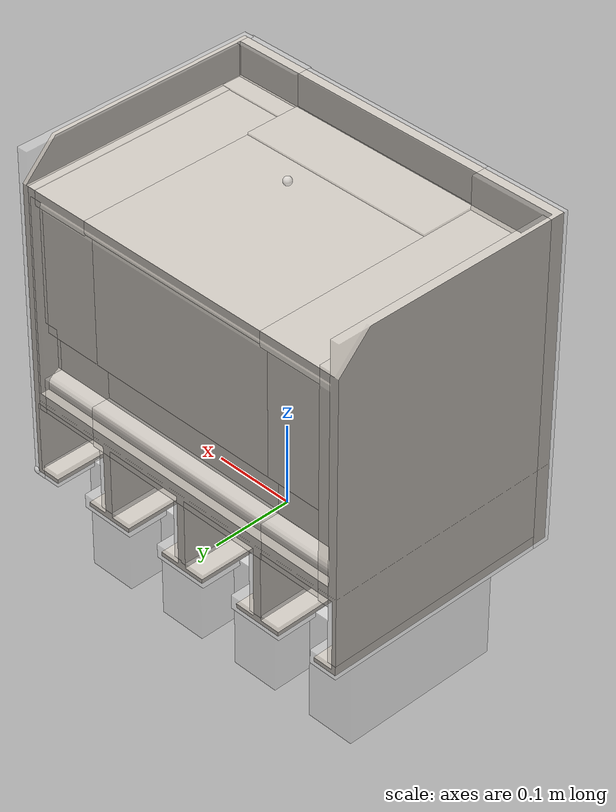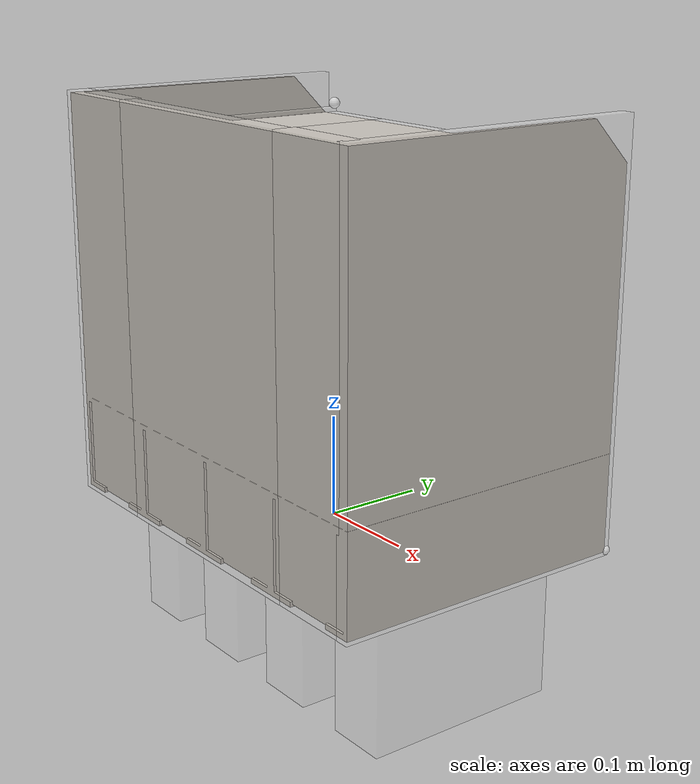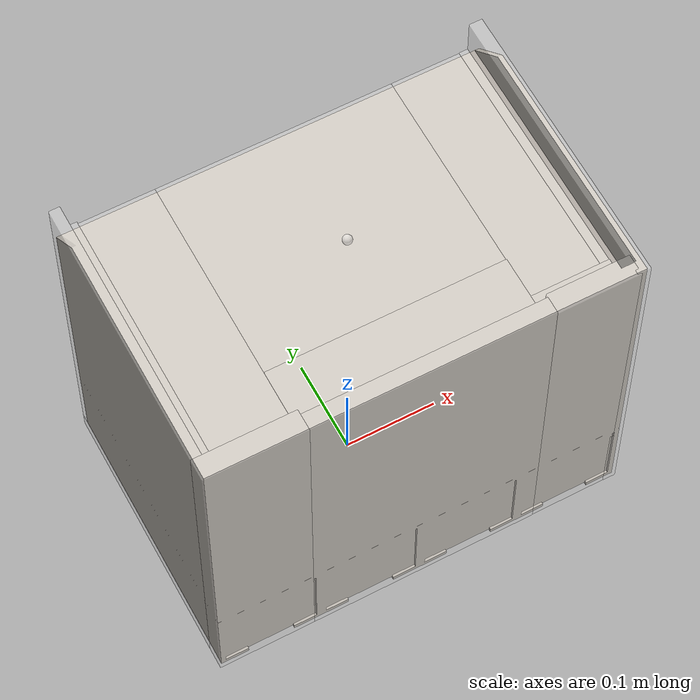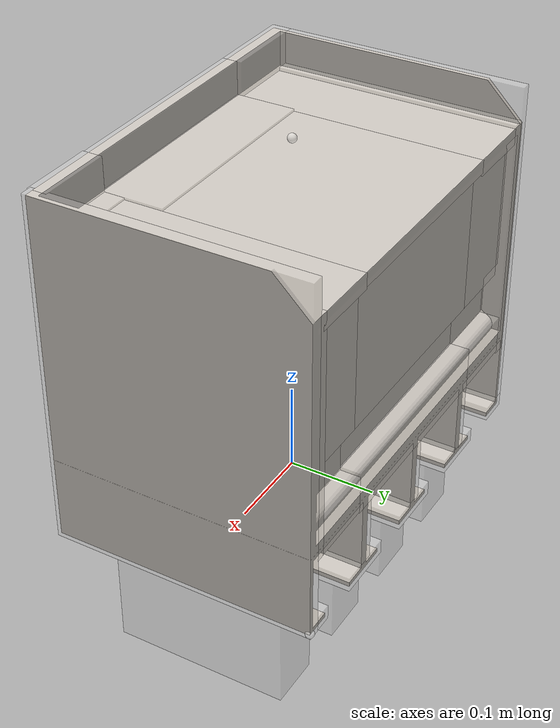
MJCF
<mujoco model="powerdrill_holder">
  <default>
    <default class="visual">
      <geom group="1" type="mesh" contype="0" conaffinity="0" density="100"/>
    </default>
    <default class="collision">
      <geom group="0" type="mesh" density="100" solimp="0.95 0.98 0.001" solref="0.004 1" rgba="1 1 1 0.25"/>
    </default>
    <default class="spawn">
      <geom group="0" rgba="1 1 1 0.5" contype="0" conaffinity="0" density="0" mass="0"/>
    </default>
  </default>
  <asset>
    <texture type="2d" name="powerdrill_holder" file="textures/powerdrill_holder.png"/>
    <material name="Material.001" texture="powerdrill_holder" specular="0.5" shininess="0.25"/>
    <mesh file="meshes/powerdrill_holder.obj" name="powerdrill_holder"/>
  </asset>
  <worldbody>
    <body>
      <body name="object">
        <geom material="Material.001" mesh="powerdrill_holder" class="visual"/>
        <geom name="collider_box_516333ae" type="box" pos="0.11 0.006959143201394105 0.003485479995282619" size="0.008404680444554316 0.034 0.1436033241479146" quat="0.50000151535312 -0.49999848464228763 0.4999984846422874 0.50000151535312" class="collision"/>
        <geom name="collider_box_dcdbc0df" type="box" pos="-0.003802258167903656 0.0067383493146069414 0.047501902937194446" size="0.008 0.03771611365395899 0.14382766805441227" quat="0.010325686859960189 0.007942339442373393 0.7070313855769556 0.7070621749494043" class="collision"/>
        <geom name="collider_box_e9625308" type="box" pos="0.004002929999999992 0.03721993500000001 0.26525812000000004" size="0.08192868 0.104033065 0.12291777" quat="0.7071067811865476 0.0 0.7071067811865472 -4.3297802811774695e-17" class="collision"/>
        <geom name="collider_box_a6d57439" type="box" pos="-0.109 0.006959169999999994 0.0034846450000000006" size="0.008404645 0.034 0.1436033" quat="0.5000000000000001 0.5000000000000001 0.5000000000000001 -0.5000000000000001" class="collision"/>
        <geom name="collider_box_cbc69279" type="box" pos="0.0040029300000000035 -0.101737155 0.222273675" size="0.034900135 0.12291777 0.142556775" quat="-0.0 -0.7071067811865476 -0.7071067811865475 -0.0" class="collision"/>
        <geom name="collider_box_9f19c9d2" type="box" pos="2.9033483871822596e-17 0.0069572263693477385 0.003447625606975718" size="0.008406216159871594 0.034 0.14360361976314917" quat="0.49993281148406415 -0.5000671794885555 0.5000671794885553 0.499932811484064" class="collision"/>
        <geom name="collider_box_b94016ac" type="box" pos="0.004002929999999997 -0.145403065 0.19884999999999997" size="0.008758934999999995 0.12291777 0.20376999999999998" quat="-0.0 -0.7071067811865476 -0.7071067811865475 -0.0" class="collision"/>
        <geom name="collider_box_e6de5c97" type="box" pos="0.004002929999999993 0.041932440000000015 0.10977827500000001" size="0.024715615000000003 0.10874556 0.12291777" quat="0.7071067811865476 0.0 0.7071067811865472 -4.3297802811774695e-17" class="collision"/>
        <geom name="collider_box_119569c3" type="box" pos="0.10999956500000001 0.007004236609296752 0.047832629694666756" size="0.008 0.03731238739140088 0.14366872839516645" quat="2.0401353569717729e-16 2.1655812986403283e-17 0.7073325305379774 0.7068809597398571" class="collision"/>
        <geom name="collider_box_b1018657" type="box" pos="0.21555919499999998 -0.0017419999999999803 0.19884999999999997" size="0.006860815000000006 0.15242 0.20376998999999998" quat="0.0 0.0 1.0 0.0" class="collision"/>
        <geom name="collider_box_2ef758d4" type="box" pos="-0.15831034 0.004872760000000013 0.263756415" size="0.039380099999999994 0.08026318499999999 0.1363864" quat="2.1648901405887348e-17 -0.0 0.7071067811865472 0.7071067811865476" class="collision"/>
        <geom name="collider_box_cb85fbaa" type="box" pos="0.16358334500000002 0.020158149999999996 0.10889687999999999" size="0.02174094 0.03666264500000001 0.13051985" quat="0.5 0.4999999999999998 -0.5000000000000002 0.5000000000000001" class="collision"/>
        <geom name="collider_box_e488177e" type="box" pos="-0.10676123 -0.130808845 0.045843760000000004" size="0.0058352850000000026 0.012153609999999995 0.03495445" quat="0.7071067811865474 -0.0 -2.220446049250313e-16 -0.7071067811865474" class="collision"/>
        <geom name="collider_box_0a5b3cc4" type="box" pos="0.16574828 0.016026869999999988 0.264935615" size="0.03882758 0.079858775 0.12638855" quat="2.1648901405887348e-17 -0.0 0.7071067811865472 0.7071067811865476" class="collision"/>
        <geom name="collider_box_573a9fb4" type="box" pos="-0.21684545553862852 0.007996060000000001 0.2072334889998491" size="0.005573086145806122 0.14268194 0.19534828778677082" quat="0.9999999999985796 -0.0 1.6854622779671757e-06 -3.0616118376240737e-17" class="collision"/>
        <geom name="collider_box_ebfc0c59" type="box" pos="0.204472185 0.020158149999999986 0.22488909499999998" size="0.005 0.13051985 0.13836535500000002" quat="0.0 0.0 -1.0 -3.061616997868383e-17" class="collision"/>
        <geom name="collider_box_dd1c286a" type="box" pos="0.20002915999999998 0.009261214999999977 0.0033764699999999986" size="0.008296460000000009 0.012351779999999993 0.140983575" quat="0.5 0.4999999999999998 -0.5000000000000002 0.5000000000000001" class="collision"/>
        <geom name="collider_box_1ffcfdd4" type="box" pos="-0.158306495 0.009582170000000004 0.10806491000000001" size="0.02259596 0.039383945000000004 0.14109583" quat="0.5 0.4999999999999998 -0.5000000000000002 0.5000000000000001" class="collision"/>
        <geom name="collider_box_c73b2f74" type="box" pos="0.167809545 -0.12261935 0.22480030500000003" size="0.012257650000000002 0.04088084500000001 0.139691105" quat="0.7071067811865475 0.0 0.0 -0.7071067811865475" class="collision"/>
        <geom name="collider_box_47b951ae" type="box" pos="0.16965572949474658 -0.14350870861735662 0.1988361362329229" size="0.011131482056352893 0.04273382234931218 0.20380806360171877" quat="0.0015791628926653909 -0.7069886670708339 0.7072213089554088 0.0015971967200716218" class="collision"/>
        <geom name="collider_box_e64d0218" type="box" pos="-0.11000080999999996 0.012839644999999986 0.04700771000000001" size="0.008304110000000003 0.03817696000000001 0.137813205" quat="0.7071067811865475 0.7071067811865475 -3.14018491736755e-16 2.9236959033086767e-16" class="collision"/>
        <geom name="collider_box_e9db7a3f" type="box" pos="-0.158306495 -0.0019644249999999906 0.15707705" size="0.026416179999999997 0.039383945 0.129549205" quat="0.5 -0.5 0.5 0.5000000000000001" class="collision"/>
        <geom name="collider_box_6700c692" type="box" pos="-0.20478395 0.008581015000000008 0.00346431" size="0.00838267 0.01763262 0.141938025" quat="0.5 -0.5 0.5 0.5000000000000001" class="collision"/>
        <geom name="collider_box_28a8e1bd" type="box" pos="-0.20448160499999998 0.007996059999999998 0.22427526999999997" size="0.006791165000000002 0.14181459999999999 0.14268194" quat="2.8636443435468185e-17 6.494670421766204e-17 0.7071067811865472 -0.7071067811865476" class="collision"/>
        <geom name="collider_box_d0d9c249" type="box" pos="-0.170667425 -0.14283783 0.19885000999999997" size="0.011324169999999995 0.051752585000000004 0.20376999999999998" quat="-0.0 -0.7071067811865476 -0.7071067811865475 -0.0" class="collision"/>
        <geom name="collider_box_08f50355" type="box" pos="-0.158306495 0.00958217000000001 0.35319100999999997" size="0.00916972000000002 0.039383945 0.14109583" quat="0.5 0.5 0.49999999999999994 -0.49999999999999994" class="collision"/>
        <geom name="collider_box_0c068556" type="box" pos="0.004002929999999992 0.030374805 0.15707968500000002" size="0.026305065000000002 0.097187935 0.12291776999999998" quat="2.164890140588733e-17 0.7071067811865475 0.0 -0.7071067811865475" class="collision"/>
        <geom name="collider_box_9ff44a1f" type="box" pos="0.004002929999999995 0.04193244000000001 0.354713595" size="0.007600924999999981 0.10874556000000002 0.12291777000000001" quat="0.7071067811865476 -0.0 0.7071067811865475 -0.0" class="collision"/>
        <geom name="collider_box_9d0ca97e" type="box" pos="0.16574828 0.020158149999999996 0.353565625" size="0.008771234999999988 0.03882758 0.13051985" quat="0.5 0.4999999999999998 -0.5000000000000002 0.5000000000000001" class="collision"/>
        <geom name="collider_box_d5b81312" type="box" pos="0.163583345 0.008778499999999993 0.15785945499999998" size="0.027217384999999997 0.03666264500000001 0.11914018000000001" quat="0.5 -0.5 0.5 0.5000000000000001" class="collision"/>
        <geom class="spawn" name="spawn_1" type="box" size="0.03 0.1 0.072" pos="-0.165 0 -0.07"/>
        <geom class="spawn" name="spawn_2" type="box" size="0.03 0.1 0.072" pos="-0.055 0 -0.07"/>
        <geom class="spawn" name="spawn_3" type="box" size="0.03 0.1 0.072" pos="0.055 0 -0.07"/>
        <geom class="spawn" name="spawn_4" type="box" size="0.03 0.1 0.072" pos="0.165 0 -0.07"/>
      </body>
      <site name="bottom_site" pos="0 0 -0.0025" rgba="1 1 1 0.5" size="0.005"/>
      <site name="top_site" pos="0 0 0.4002" rgba="1 1 1 0.5" size="0.005"/>
      <site name="horizontal_radius_site" pos="0.22 0.148258 0" rgba="1 1 1 0.5" size="0.005"/>
    </body>
  </worldbody>
</mujoco>
